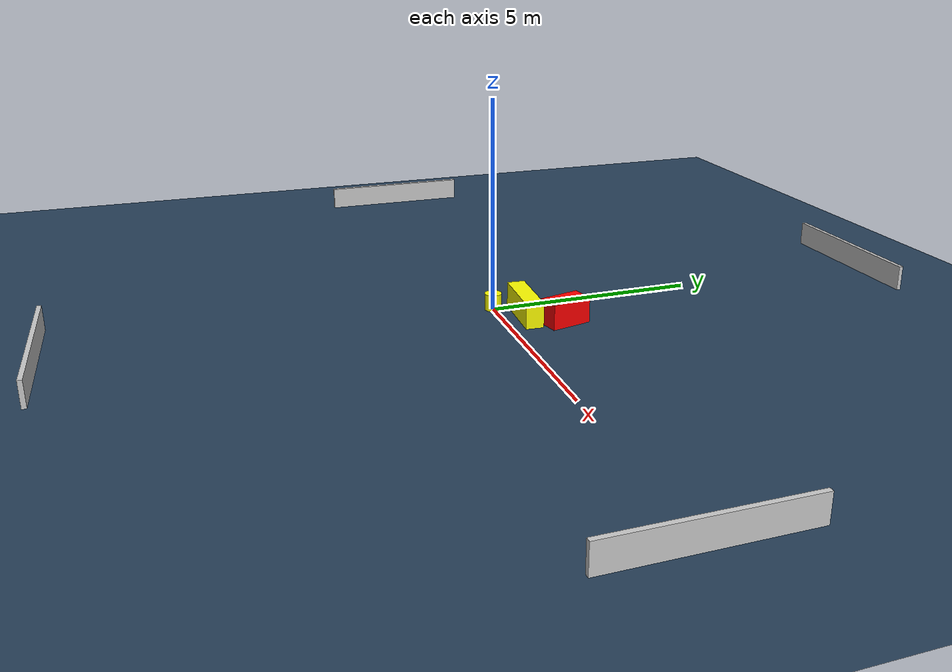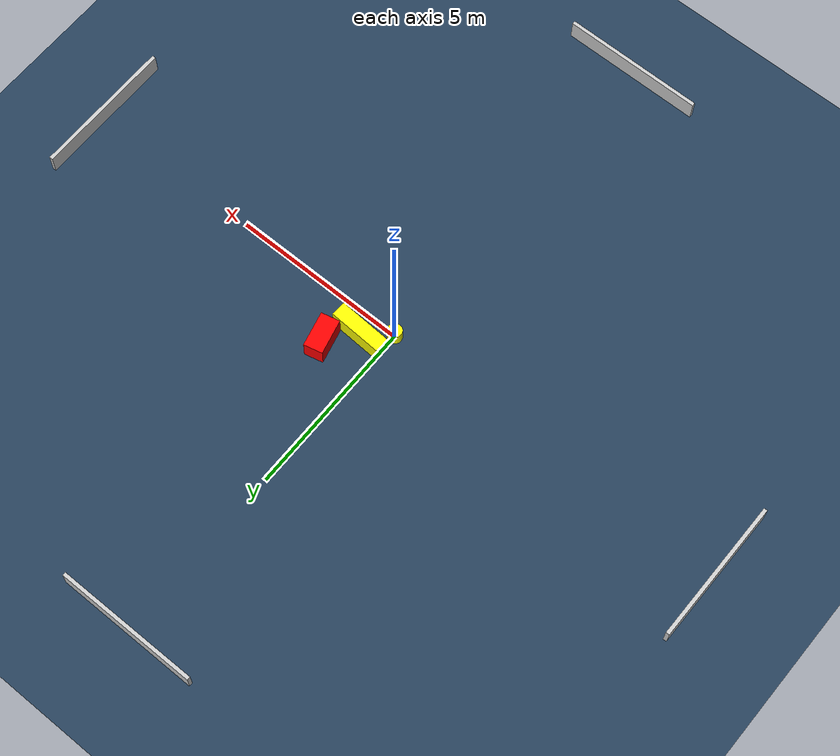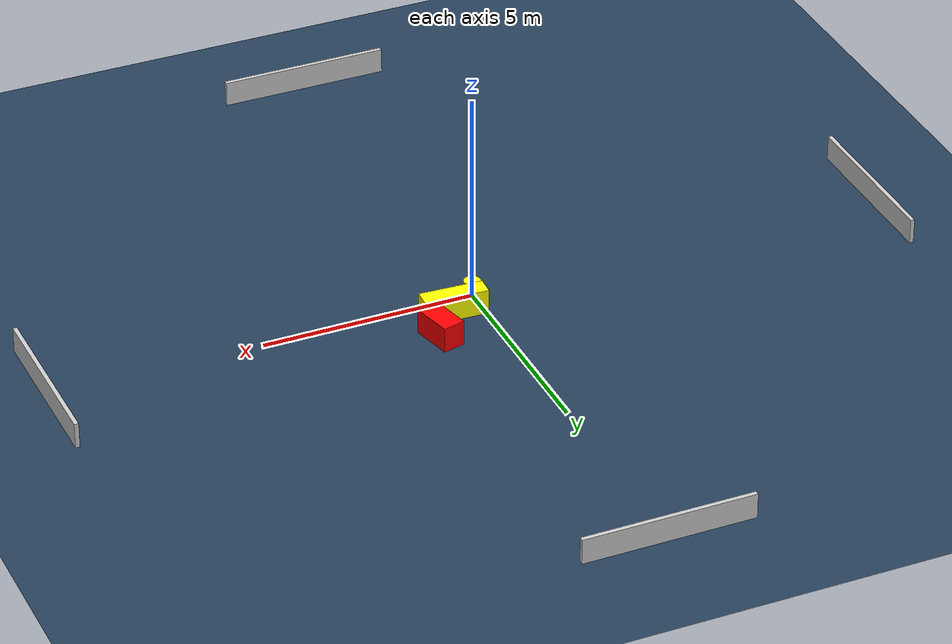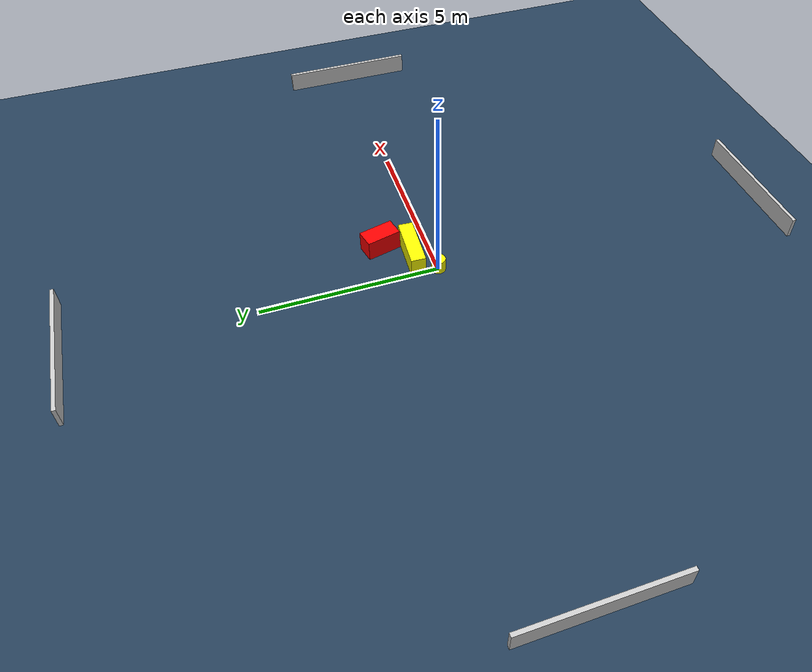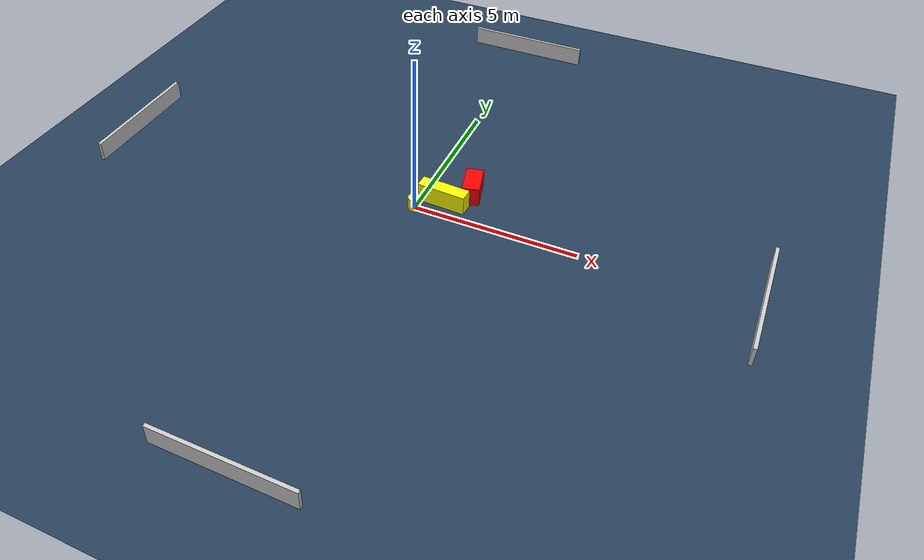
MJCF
<?xml version="1.0" ?>
<mujoco model="generated_environment">
  <option timestep="0.01" integrator="RK4" cone="elliptic"/>
  <default>
    <geom density="1"/>
  </default>
  <asset>
    <texture builtin="gradient" height="3072" name="skybox" rgb1="0.3 0.5 0.7" rgb2="0 0 0" type="skybox" width="512"/>
    <texture builtin="checker" height="300" name="groundplane" rgb1="0.2 0.3 0.4" rgb2="0.1 0.2 0.3" type="2d" width="300"/>
    <material name="groundplane" reflectance="0.2" texrepeat="5 5" texture="groundplane"/>
  </asset>
  <worldbody>
    <light dir="0 0 -1" directional="true" pos="0 0 1.5"/>
    <geom condim="3" friction="0.5 0.005 0.001" material="groundplane" name="floor" pos="0 0 0" size="0 0 0.05" type="plane"/>
    <body name="walls">
      <geom name="wall_1" condim="4" pos="-10.0 0.0 0.3" rgba="0.800000011920929 0.800000011920929 0.800000011920929 1.0" size="0.05 2.0 0.3" type="box"/>
      <geom name="wall_2" condim="4" pos="10.0 0.0 0.3" rgba="0.800000011920929 0.800000011920929 0.800000011920929 1.0" size="0.05 2.0 0.3" type="box"/>
      <geom name="wall_3" condim="4" pos="0.0 -10.0 0.3" rgba="0.800000011920929 0.800000011920929 0.800000011920929 1.0" size="2.0 0.05 0.3" type="box"/>
      <geom name="wall_4" condim="4" pos="0.0 10.0 0.3" rgba="0.800000011920929 0.800000011920929 0.800000011920929 1.0" size="2.0 0.05 0.3" type="box"/>
    </body>
    <body name="robot">
      <joint name="joint_x" type="slide" pos="0 0 0" axis="1 0 0"/>
      <joint name="joint_y" type="slide" pos="0 0 0" axis="0 1 0"/>
      <geom name="robot" type="cylinder" pos="0.0 0.0 0.2" size="0.2 0.2 0.0" mass="5.0" friction="1.0 0.005 0.0001" condim="4" rgba="1.0 1.0 0.0 1.0"/>
    </body>
    <body name="obstacle_1_movable">
      <geom name="obstacle_1_movable" condim="4" pos="0.6854282885222067 0.5476757418120624 0.3" euler="0 0 267.03800268455996" friction="0.0 0.005 0.001" rgba="1.0 1.0 0.0 1.0" size="0.2098650643199927 0.7502082023868288 0.3" type="box" mass="0.1"/>
      <joint type="free"/>
    </body>
    <body name="obstacle_2_static">
      <geom name="obstacle_2_static" condim="4" pos="1.3208345360988871 1.2893685699564528 0.3" euler="0 0 283.3870938594705" friction="0.0 0.005 0.001" rgba="1.0 0.0 0.0 1.0" size="0.4925796708779031 0.2650280311741307 0.3" type="box"/>
    </body>
  </worldbody>
  <actuator>
    <motor name="actuator_x" joint="joint_x" gear="1" ctrlrange="-1 1"/>
    <motor name="actuator_y" joint="joint_y" gear="1" ctrlrange="-1 1"/>
  </actuator>
</mujoco>
